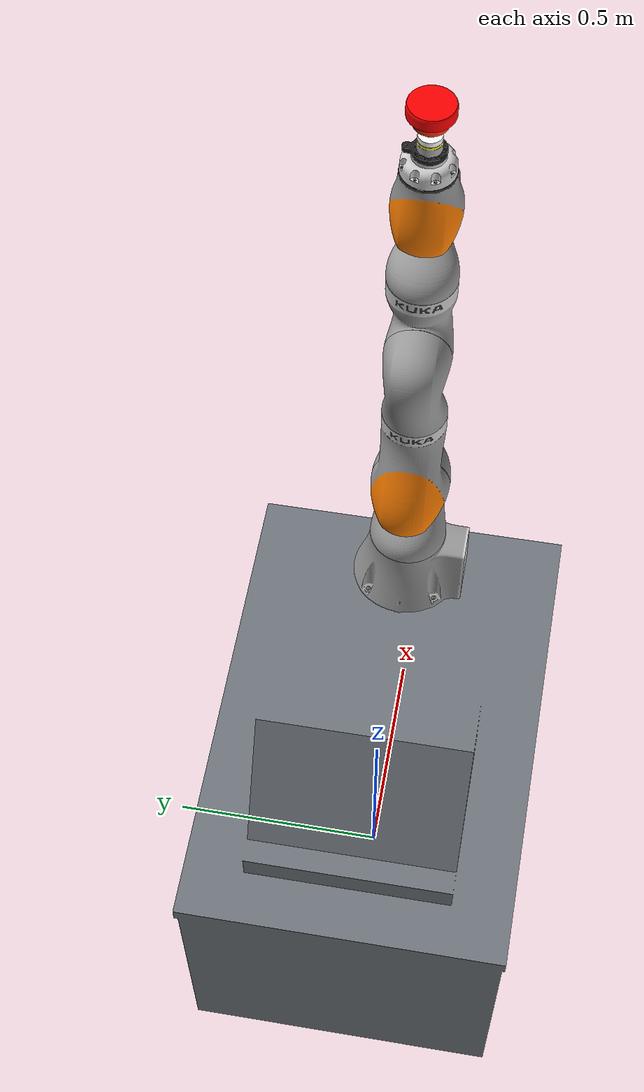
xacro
<?xml version="1.0" ?>

<!-- top level -->
<robot name="iiwa14" xmlns:xacro="http://www.ros.org/wiki/xacro">

    <xacro:property name="base_mass" value="40.0" />
    <xacro:property name="robot_offset_x" value="0.40" />
    <xacro:property name="robot_offset_y" value="0.0" />
    <xacro:property name="base_ixx" value="5.333" />
    <xacro:property name="base_iyy" value="5.600" />
    <xacro:property name="base_izz" value="5.467" />

    <!-- include the iiwa macro and controller -->
    <xacro:include filename="$(find lbr_description)/urdf/iiwa14/iiwa14.urdf.xacro" />
    <xacro:include filename="$(find lbr_description)/gazebo/lbr_gazebo.xacro" />
    <xacro:include filename="$(find lbr_description)/ros2_control/lbr_system_interface.xacro" />
    <xacro:include
        filename="$(find lbr_description)/models/ft_sensor/real_ft_sensor_macro.xacro"
    />
    <xacro:include filename="$(find lbr_description)/models/tool/tool.xacro" />

    <!-- arguments -->
    <xacro:arg name="robot_name" default="lbr" />
    <xacro:arg name="mode" default="true" />
    <xacro:arg
        name="joint_limits_path"
        default="$(find lbr_description)/urdf/iiwa14/joint_limits.yaml" />
    <xacro:arg
        name="system_config_path"
        default="$(find lbr_description)/ros2_control/lbr_system_config.yaml" />
    <xacro:arg
        name="initial_joint_positions_path"
        default="$(find lbr_description)/ros2_control/initial_joint_positions.yaml" />

    <xacro:macro
        name="ft_gazebo_plugin"
        params="ft_joint_name topic_name update_rate:='1000' noise_stddev_force:='0.01' noise_stddev_torque:='0.001'"
    >
        <gazebo reference="${ft_joint_name}">
            <preserveFixedJoint>true</preserveFixedJoint>
            <sensor name="ft_sensor" type="force_torque">
                <always_on>true</always_on>
                <update_rate>${update_rate}</update_rate>
                <visualize>false</visualize>
                <force_torque>
                    <frame>child</frame>
                    <measure_direction>child_to_parent</measure_direction>
                    <force>
                        <x><noise type="gaussian"><mean>0.0</mean><stddev
                                >${noise_stddev_force}</stddev></noise></x>
                        <y><noise type="gaussian"><mean>0.0</mean><stddev
                                >${noise_stddev_force}</stddev></noise></y>
                        <z><noise type="gaussian"><mean>0.0</mean><stddev
                                >${noise_stddev_force}</stddev></noise></z>
                    </force>
                    <torque>
                        <x><noise type="gaussian"><mean>0.0</mean><stddev
                                >${noise_stddev_torque}</stddev></noise></x>
                        <y><noise type="gaussian"><mean>0.0</mean><stddev
                                >${noise_stddev_torque}</stddev></noise></y>
                        <z><noise type="gaussian"><mean>0.0</mean><stddev
                                >${noise_stddev_torque}</stddev></noise></z>
                    </torque>
                </force_torque>
                <topic>${topic_name}</topic>
                <plugin
                    filename="gz-sim-forcetorque-system"
                    name="gz::sim::systems::ForceTorque"
                />
            </sensor>
        </gazebo>
    </xacro:macro>

    <!-- KDL requires a link without inertia / Gazebo requires a connection to world link or robot
    will tipple https://github.com/lbr-stack/lbr_fri_ros2_stack/issues/230 -->
    <link name="world" />

    <!-- base_link between world and link_0 -->
    <link name="$(arg robot_name)_base_link">
        <inertial>
            <origin xyz="0 0 0" rpy="0 0 0" />
            <mass value="${base_mass}" />
            <inertia
                ixx="${base_ixx}"
                ixy="0.0"
                ixz="0.0"
                iyy="${base_iyy}"
                iyz="0.0"
                izz="${base_izz}"
            />
        </inertial>
        <visual>
            <origin xyz="0 0 0" rpy="0 0 0" />
            <geometry>
                <mesh
                    filename="package://lbr_description/meshes/iiwa14/carrito_azul/Cuerpo_carro_1.dae"
                />
            </geometry>
        </visual>
        <!-- simplified box for collision optimization -->
        <collision>
            <origin xyz="-0.2195 0 0.1615" rpy="0 0 0" />
            <geometry>
                <box size="0.389 0.705 0.323" />
            </geometry>
        </collision>
    </link>

    <!-- joint between world and base_link -->
    <joint name="$(arg robot_name)_world_joint" type="fixed">
        <parent link="world" />
        <child link="$(arg robot_name)_base_link" />
        <origin xyz="0 0 0.660" rpy="0 0 0" />
    </joint>

    <!-- joint between base_link and link_0 -->
    <joint name="$(arg robot_name)_base_robot_joint" type="fixed">
        <parent link="$(arg robot_name)_base_link" />
        <child link="$(arg robot_name)_link_0" />
        <origin xyz="${robot_offset_x} ${robot_offset_y} 0" rpy="0 0 ${pi/2}" />
    </joint>

    <!-- macros for gazebo / mock / hardware -->
    <xacro:lbr_gazebo robot_name="$(arg robot_name)" />
    <xacro:lbr_system_interface
        robot_name="$(arg robot_name)"
        mode="$(arg mode)"
        system_config_path="$(arg system_config_path)"
        initial_joint_positions_path="$(arg initial_joint_positions_path)" />

    <!-- iiwa description -->
    <xacro:iiwa14
        robot_name="$(arg robot_name)"
        joint_limits_path="$(arg joint_limits_path)" />

    <xacro:brida_cam parent="$(arg robot_name)_link_7" name="brida_cam">
        <origin xyz="0 0 0.035" rpy="0 0 0" />
    </xacro:brida_cam>

    <xacro:ft45 parent="brida_cam_tip" name="ft45">
        <origin xyz="0 0 0" rpy="0 0 ${pi}" />
    </xacro:ft45>

    <!-- plugin FT sobre joint: brida_cam_tip_ft45_base_joint -->
    <xacro:ft_gazebo_plugin
        ft_joint_name="brida_cam_tip_ft45_base_joint"
        topic_name="ft_sensor/wrench"
        update_rate="200"
    />

    <xacro:brida_ft parent="ft45_tip" name="brida_ft">
        <origin xyz="0 0 0" rpy="0 0 0" />
    </xacro:brida_ft>

    <xacro:repair_tool_iiwa name="tool_body" parent="brida_ft_tip">
        <origin xyz="0 0 0" rpy="0 0 0" />
    </xacro:repair_tool_iiwa>

    <xacro:repair_sponge_red name="tool" parent="tool_body_tip">
        <origin xyz="0 0 0" rpy="0 0 ${pi}" />
    </xacro:repair_sponge_red>

    <!-- state-only interface for passive sponge joints -->
    <ros2_control name="$(arg robot_name)_tool_passive_interface" type="system">
        <hardware>
            <plugin>mock_components/GenericSystem</plugin>
        </hardware>
        <joint name="tool_layer1_joint">
            <state_interface name="position">
                <param name="initial_value">0.0</param>
            </state_interface>
        </joint>
        <joint name="tool_layer2_joint">
            <state_interface name="position">
                <param name="initial_value">0.0</param>
            </state_interface>
        </joint>
        <joint name="tool_layer3_joint">
            <state_interface name="position">
                <param name="initial_value">0.0</param>
            </state_interface>
        </joint>
    </ros2_control>

    <joint name="$(arg robot_name)_joint_ee" type="fixed">
        <parent link="tool_tip" />
        <child link="$(arg robot_name)_link_ee" />
        <origin xyz="0 0 0" rpy="0 0 0" />
    </joint>

    <link name="$(arg robot_name)_link_ee">
    </link>

    <!-- camera link 7 -->

    <!-- Sensor FT45 -->

    <!-- Brida FT -->

    <!-- Tool body (base de la esponja) -->

    <gazebo reference="brida_cam_tip_ft45_base_joint">
        <provideFeedback>true</provideFeedback>
    </gazebo>

    <!-- Tool (sponge) -->
    <gazebo reference="ft45_base">
        <kp>500000.0</kp>            <!-- stiffness low -->
        <kd>5.0</kd>              <!-- damping moderate -->
        <mu1>1.0</mu1>             <!-- high friction sponge-screen -->
        <mu2>0.8</mu2>
        <maxVel>0.01</maxVel>
        <minDepth>0.0001</minDepth>
        <maxContacts>6</maxContacts>
    </gazebo>

</robot>

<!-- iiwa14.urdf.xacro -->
<robot xmlns:xacro="http://www.ros.org/wiki/xacro">
    <!-- robot as extracted via https://github.com/syuntoku14/fusion2urdf -->
    <xacro:macro name="iiwa14"
        params="robot_name:=^|lbr joint_limits_path:=^|'$(find lbr_description)/urdf/iiwa14/joint_limits.yaml'">

        <!-- load joint limits via yaml -->
        <xacro:property name="joint_limits" value="${xacro.load_yaml(joint_limits_path)}" />

        <!-- constants -->
        <xacro:property name="PI" value="3.1415926535897931" />
        <xacro:property name="joint_damping" value="10.0" />
        <xacro:property name="joint_friction" value="0.1" />

        <!-- links and joints -->
        <link name="${robot_name}_link_0">
            <inertial>
                <origin rpy="0 0 0" xyz="-0.012822 0.0 0.071507" />
                <mass value="7.050378" />
                <inertia ixx="0.031226" ixy="0.0" ixz="0.000871" iyy="0.039697" iyz="0.0"
                    izz="0.043102" />
            </inertial>
            <visual>
                <origin rpy="0 0 0" xyz="0 0 0" />
                <geometry>
                    <mesh filename="package://lbr_description/meshes/iiwa14/visual/link_0.dae" />
                </geometry>
            </visual>
            <collision>
                <origin rpy="0 0 0" xyz="0 0 0" />
                <geometry>
                    <mesh filename="package://lbr_description/meshes/iiwa14/collision/link_0.stl" />
                </geometry>
            </collision>
        </link>

        <joint name="${robot_name}_A1" type="revolute">
            <origin rpy="0 0 0" xyz="0.0 0.0 0.1475" />
            <parent link="${robot_name}_link_0" />
            <child link="${robot_name}_link_1" />
            <axis xyz="0.0 0.0 1.0" />
            <limit
                effort="${joint_limits['A1']['effort']}"
                lower="${joint_limits['A1']['lower'] * PI / 180}"
                upper="${joint_limits['A1']['upper'] * PI / 180}"
                velocity="${joint_limits['A1']['velocity'] * PI / 180}" />
            <safety_controller
                soft_lower_limit="${joint_limits['A1']['lower'] * PI / 180}"
                soft_upper_limit="${joint_limits['A1']['upper'] * PI / 180}"
                k_position="${joint_limits['A1']['velocity'] / joint_limits['A1']['safety_position_margin']}"
                k_velocity="${joint_limits['A1']['k_velocity']}" />
            <dynamics damping="${joint_damping}" friction="${joint_friction}" />
        </joint>

        <link name="${robot_name}_link_1">
            <inertial>
                <origin rpy="0 0 0" xyz="0.0 -0.033795 0.132404" />
                <mass value="5.289529" />
                <inertia ixx="0.042462" ixy="0.0" ixz="0.0" iyy="0.042838" iyz="0.006341"
                    izz="0.01587" />
            </inertial>
            <visual>
                <origin rpy="0 0 0" xyz="0.0 0.0 -0.1475" />
                <geometry>
                    <mesh filename="package://lbr_description/meshes/iiwa14/visual/link_1.dae" />
                </geometry>
            </visual>
            <collision>
                <origin rpy="0 0 0" xyz="0.0 0.0 -0.1475" />
                <geometry>
                    <mesh filename="package://lbr_description/meshes/iiwa14/collision/link_1.stl" />
                </geometry>
            </collision>
        </link>

        <joint name="${robot_name}_A2" type="revolute">
            <origin rpy="0 0 0" xyz="0.0 -0.01 0.2125" />
            <parent link="${robot_name}_link_1" />
            <child link="${robot_name}_link_2" />
            <axis xyz="0.0 1.0 0.0" />
            <limit
                effort="${joint_limits['A2']['effort']}"
                lower="${joint_limits['A2']['lower'] * PI / 180}"
                upper="${joint_limits['A2']['upper'] * PI / 180}"
                velocity="${joint_limits['A2']['velocity'] * PI / 180}" />
            <safety_controller
                soft_lower_limit="${joint_limits['A2']['lower'] * PI / 180}"
                soft_upper_limit="${joint_limits['A2']['upper'] * PI / 180}"
                k_position="${joint_limits['A2']['velocity'] / joint_limits['A2']['safety_position_margin']}"
                k_velocity="${joint_limits['A2']['k_velocity']}" />
            <dynamics damping="${joint_damping}" friction="${joint_friction}" />
        </joint>

        <link name="${robot_name}_link_2">
            <inertial>
                <origin rpy="0 0 0" xyz="0.000136 0.047548 0.076322" />
                <mass value="5.688888" />
                <inertia ixx="0.055182" ixy="-3.3e-05" ixz="5.6e-05" iyy="0.053983" iyz="0.010034"
                    izz="0.016523" />
            </inertial>
            <visual>
                <origin rpy="0 0 0" xyz="0.0 0.01 -0.36" />
                <geometry>
                    <mesh filename="package://lbr_description/meshes/iiwa14/visual/link_2.dae" />
                </geometry>
            </visual>
            <collision>
                <origin rpy="0 0 0" xyz="0.0 0.01 -0.36" />
                <geometry>
                    <mesh filename="package://lbr_description/meshes/iiwa14/collision/link_2.stl" />
                </geometry>
            </collision>
        </link>

        <joint name="${robot_name}_A3" type="revolute">
            <origin rpy="0 0 0" xyz="0.0 0.01 0.228" />
            <parent link="${robot_name}_link_2" />
            <child link="${robot_name}_link_3" />
            <axis xyz="0.0 0.0 1.0" />
            <limit
                effort="${joint_limits['A3']['effort']}"
                lower="${joint_limits['A3']['lower'] * PI / 180}"
                upper="${joint_limits['A3']['upper'] * PI / 180}"
                velocity="${joint_limits['A3']['velocity'] * PI / 180}" />
            <safety_controller
                soft_lower_limit="${joint_limits['A3']['lower'] * PI / 180}"
                soft_upper_limit="${joint_limits['A3']['upper'] * PI / 180}"
                k_position="${joint_limits['A3']['velocity'] / joint_limits['A3']['safety_position_margin']}"
                k_velocity="${joint_limits['A3']['k_velocity']}" />
            <dynamics damping="${joint_damping}" friction="${joint_friction}" />
        </joint>

        <link name="${robot_name}_link_3">
            <inertial>
                <origin rpy="0 0 0" xyz="0.0 0.034913 0.123108" />
                <mass value="3.461245" />
                <inertia ixx="0.02172" ixy="0.0" ixz="0.0" iyy="0.02073" iyz="-0.003845"
                    izz="0.007701" />
            </inertial>
            <visual>
                <origin rpy="0 0 0" xyz="0.0 0.0 -0.588" />
                <geometry>
                    <mesh filename="package://lbr_description/meshes/iiwa14/visual/link_3.dae" />
                </geometry>
            </visual>
            <collision>
                <origin rpy="0 0 0" xyz="0.0 0.0 -0.588" />
                <geometry>
                    <mesh filename="package://lbr_description/meshes/iiwa14/collision/link_3.stl" />
                </geometry>
            </collision>
        </link>

        <joint name="${robot_name}_A4" type="revolute">
            <origin rpy="0 0 0" xyz="0.0 0.0105 0.192" />
            <parent link="${robot_name}_link_3" />
            <child link="${robot_name}_link_4" />
            <axis xyz="0.0 -1.0 0.0" />
            <limit
                effort="${joint_limits['A4']['effort']}"
                lower="${joint_limits['A4']['lower'] * PI / 180}"
                upper="${joint_limits['A4']['upper'] * PI / 180}"
                velocity="${joint_limits['A4']['velocity'] * PI / 180}" />
            <safety_controller
                soft_lower_limit="${joint_limits['A4']['lower'] * PI / 180}"
                soft_upper_limit="${joint_limits['A4']['upper'] * PI / 180}"
                k_position="${joint_limits['A4']['velocity'] / joint_limits['A4']['safety_position_margin']}"
                k_velocity="${joint_limits['A4']['k_velocity']}" />
            <dynamics damping="${joint_damping}" friction="${joint_friction}" />
        </joint>

        <link name="${robot_name}_link_4">
            <inertial>
                <origin rpy="0 0 0" xyz="0.0 -0.039793 0.086944" />
                <mass value="4.122995" />
                <inertia ixx="0.03241" ixy="0.0" ixz="0.0" iyy="0.030758" iyz="-0.006022"
                    izz="0.009883" />
            </inertial>
            <visual>
                <origin rpy="0 0 0" xyz="0.0 -0.0105 -0.78" />
                <geometry>
                    <mesh filename="package://lbr_description/meshes/iiwa14/visual/link_4.dae" />
                </geometry>
            </visual>
            <collision>
                <origin rpy="0 0 0" xyz="0.0 -0.0105 -0.78" />
                <geometry>
                    <mesh filename="package://lbr_description/meshes/iiwa14/collision/link_4.stl" />
                </geometry>
            </collision>
        </link>

        <joint name="${robot_name}_A5" type="revolute">
            <origin rpy="0 0 0" xyz="0.0 -0.0105 0.2075" />
            <parent link="${robot_name}_link_4" />
            <child link="${robot_name}_link_5" />
            <axis xyz="0.0 0.0 1.0" />
            <limit
                effort="${joint_limits['A5']['effort']}"
                lower="${joint_limits['A5']['lower'] * PI / 180}"
                upper="${joint_limits['A5']['upper'] * PI / 180}"
                velocity="${joint_limits['A5']['velocity'] * PI / 180}" />
            <safety_controller
                soft_lower_limit="${joint_limits['A5']['lower'] * PI / 180}"
                soft_upper_limit="${joint_limits['A5']['upper'] * PI / 180}"
                k_position="${joint_limits['A5']['velocity'] / joint_limits['A5']['safety_position_margin']}"
                k_velocity="${joint_limits['A5']['k_velocity']}" />
            <dynamics damping="${joint_damping}" friction="${joint_friction}" />
        </joint>

        <link name="${robot_name}_link_5">
            <inertial>
                <origin rpy="0 0 0" xyz="0.0 -0.029824 0.076267" />
                <mass value="1.563756" />
                <inertia ixx="0.008677" ixy="0.0" ixz="0.0" iyy="0.007297" iyz="0.002869"
                    izz="0.003935" />
            </inertial>
            <visual>
                <origin rpy="0 0 0" xyz="0.0 0.0 -0.9875" />
                <geometry>
                    <mesh filename="package://lbr_description/meshes/iiwa14/visual/link_5.dae" />
                </geometry>
            </visual>
            <collision>
                <origin rpy="0 0 0" xyz="0.0 0.0 -0.9875" />
                <geometry>
                    <mesh filename="package://lbr_description/meshes/iiwa14/collision/link_5.stl" />
                </geometry>
            </collision>
        </link>

        <joint name="${robot_name}_A6" type="revolute">
            <origin rpy="0 0 0" xyz="0.0 -0.0707 0.1925" />
            <parent link="${robot_name}_link_5" />
            <child link="${robot_name}_link_6" />
            <axis xyz="0.0 1.0 0.0" />
            <limit
                effort="${joint_limits['A6']['effort']}"
                lower="${joint_limits['A6']['lower'] * PI / 180}"
                upper="${joint_limits['A6']['upper'] * PI / 180}"
                velocity="${joint_limits['A6']['velocity'] * PI / 180}" />
            <safety_controller
                soft_lower_limit="${joint_limits['A6']['lower'] * PI / 180}"
                soft_upper_limit="${joint_limits['A6']['upper'] * PI / 180}"
                k_position="${joint_limits['A6']['velocity'] / joint_limits['A6']['safety_position_margin']}"
                k_velocity="${joint_limits['A6']['k_velocity']}" />
            <dynamics damping="${joint_damping}" friction="${joint_friction}" />
        </joint>

        <link name="${robot_name}_link_6">
            <inertial>
                <origin rpy="0 0 0" xyz="0.0 0.07102 0.00495" />
                <mass value="2.457878" />
                <inertia ixx="0.007227" ixy="0.0" ixz="0.0" iyy="0.006958" iyz="0.000318"
                    izz="0.004734" />
            </inertial>
            <visual>
                <origin rpy="0 0 0" xyz="0.0 0.0707 -1.18" />
                <geometry>
                    <mesh filename="package://lbr_description/meshes/iiwa14/visual/link_6.dae" />
                </geometry>
            </visual>
            <collision>
                <origin rpy="0 0 0" xyz="0.0 0.0707 -1.18" />
                <geometry>
                    <mesh filename="package://lbr_description/meshes/iiwa14/collision/link_6.stl" />
                </geometry>
            </collision>
        </link>

        <joint name="${robot_name}_A7" type="revolute">
            <origin rpy="0 0 0" xyz="0.0 0.0707 0.091" />
            <parent link="${robot_name}_link_6" />
            <child link="${robot_name}_link_7" />
            <axis xyz="0.0 0.0 1.0" />
            <limit
                effort="${joint_limits['A7']['effort']}"
                lower="${joint_limits['A7']['lower'] * PI / 180}"
                upper="${joint_limits['A7']['upper'] * PI / 180}"
                velocity="${joint_limits['A7']['velocity'] * PI / 180}" />
            <safety_controller
                soft_lower_limit="${joint_limits['A7']['lower'] * PI / 180}"
                soft_upper_limit="${joint_limits['A7']['upper'] * PI / 180}"
                k_position="${joint_limits['A7']['velocity'] / joint_limits['A7']['safety_position_margin']}"
                k_velocity="${joint_limits['A7']['k_velocity']}" />
            <dynamics damping="${joint_damping}" friction="${joint_friction}" />
        </joint>

        <link name="${robot_name}_link_7">
            <inertial>
                <origin rpy="0 0 0" xyz="3.0000e-06 -2.0000e-06 1.3782e-02" />
                <mass value="0.265331" />
                <inertia ixx="0.000175" ixy="0.0" ixz="0.0" iyy="0.000175" iyz="0.0" izz="0.000306" />
            </inertial>
            <visual>
                <origin rpy="0 0 0" xyz="0.0 0.0 -1.271" />
                <geometry>
                    <mesh filename="package://lbr_description/meshes/iiwa14/visual/link_7.dae" />
                </geometry>
            </visual>
            <collision>
                <origin rpy="0 0 0" xyz="0.0 0.0 -1.271" />
                <geometry>
                    <mesh filename="package://lbr_description/meshes/iiwa14/collision/link_7.stl" />
                </geometry>
            </collision>
        </link>

    </xacro:macro>
</robot>

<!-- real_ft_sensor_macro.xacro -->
<robot name="ft_sensor_OnRobot" xmlns:xacro="http://ros.org/wiki/xacro">

	<!-- Common tools: PI, inertias of a cuboid and cylinder -->
	<xacro:property name="M_PI" value="3.1415926535897931"/>
	<xacro:macro name="cuboid_inertia_def" params="width height length mass">
	<inertia ixx="${mass * (height * height + length * length) / 12}"
		 iyy="${mass * (width * width + length * length) / 12}"
		 izz="${mass * (width * width + height * height) / 12}"
		 ixy="0" iyz="0" ixz="0"/>
	</xacro:macro>
	<xacro:macro name="cylinder_inertia_def" params="radius length mass">
	<inertia ixx="${mass * (3 * radius * radius + length * length) / 12}"
		     iyy="${mass * (3 * radius * radius + length * length) / 12}"
		     izz="${mass * radius* radius / 2}"
		     ixy="0" iyz="0" ixz="0"/>
	</xacro:macro>

    <xacro:macro name="brida_cam" params="parent name *origin">

    <joint name="${parent}_${name}_base_joint" type="fixed">
      <xacro:insert_block name="origin"/>
      <parent link="${parent}"/>
      <child link="${name}_base"/>
    </joint>

    <link name="${name}_base">
	<inertial>
		<mass value="0.05"/>
		<origin xyz="0 0 0.005"  />
		<xacro:cylinder_inertia_def radius="0.031" length="0.01" mass="0.05"/>
	</inertial>
	<visual>
		<origin xyz="0 0 0" rpy="0 0 0"/>
		<geometry>
			<mesh filename="package://lbr_description/models/brida/meshes/visual/brida_cam.dae"/>
		</geometry>
	</visual>
	<collision>
		<origin xyz="0 0 0" rpy="0 0 0"/>
		<geometry>
		<!--- ahora usa un cilindro primitivo para optimizar los golpes y el calculo de colisiones -->
			<cylinder radius="0.031" length="0.01"/>
		</geometry>
	</collision>
    </link>

    <link name="${name}_tip"/>

    <joint name="${parent}_${name}_tip_joint" type="fixed">
      <origin xyz="0 0 0.01" rpy="0 0 0"/>
      <parent link="${name}_base"/>
      <child link="${name}_tip"/>
    </joint>

    </xacro:macro>

    <xacro:macro name="ft45" params="parent name *origin">

    <joint name="${parent}_${name}_base_joint" type="fixed">
      <xacro:insert_block name="origin"/>
      <parent link="${parent}"/>
      <child link="${name}_base"/>
    </joint>

    <link name="${name}_base">
	<inertial>
		<mass value="0.15"/>
		<origin xyz="0 0 0.0105"  />
		<xacro:cylinder_inertia_def radius="0.0225" length="0.021" mass="0.15"/>
	</inertial>
	<visual>
		<origin xyz="0 0 0" rpy="0 0 0"/>
		<geometry>
			<mesh filename="package://lbr_description/models/ft_sensor/meshes/visual/FT45.dae"/>
		</geometry>
	</visual>
	<collision>
		<origin xyz="0 0 0" rpy="0 0 0"/>
		<geometry>
		<cylinder radius="0.0225" length="0.021"/>
		<!--- la parte de arriba ya han llegado a usar formas primitivas para ahorrar CPU -->
		</geometry>
	</collision>
    </link>

    <link name="${name}_tip"/>

    <joint name="${parent}_${name}_tip_joint" type="fixed">
      <origin xyz="0 0 0.021" rpy="0 0 0"/>
      <parent link="${name}_base"/>
      <child link="${name}_tip"/>
    </joint>

    </xacro:macro>

    <xacro:macro name="brida_ft" params="parent name *origin">

    <joint name="${parent}_${name}_base_joint" type="fixed">
      <xacro:insert_block name="origin"/>
      <parent link="${parent}"/>
      <child link="${name}_base"/>
    </joint>

    <link name="${name}_base">
	<inertial>
		<mass value="0.05"/>
		<origin xyz="0 0 0.005"  />
		<xacro:cylinder_inertia_def radius="0.022" length="0.01" mass="0.05"/>
	</inertial>
	<visual>
		<origin xyz="0 0 0" rpy="0 0 0"/>
		<geometry>
			<mesh filename="package://lbr_description/models/brida/meshes/visual/brida_ft.dae"/>
		</geometry>
	</visual>
	<collision>
		<origin xyz="0 0 0" rpy="0 0 0"/>
		<geometry>
		    <cylinder radius="0.022" length="0.01"/>
		</geometry>
	</collision>
    </link>

    <link name="${name}_tip"/>

    <joint name="${parent}_${name}_tip_joint" type="fixed">
      <origin xyz="0 0 0.015" rpy="0 0 0"/>
      <parent link="${name}_base"/>
      <child link="${name}_tip"/>
    </joint>

    </xacro:macro>

</robot>

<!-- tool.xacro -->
<robot xmlns:xacro="http://ros.org/wiki/xacro">

    <xacro:macro name="repair_tool" params="name parent *origin">

      <joint name="${name}_base_joint" type="fixed">
        <xacro:insert_block name="origin" />
        <parent link="${parent}"/>
        <child link="${name}_base"/>
      </joint>

      <link name="${name}_base">
        <inertial>
          <mass value="0.8" />
          <origin xyz="-0.015887 0 0.036837" rpy="0 0 0" />
          <inertia ixx="0.001143" ixy="-0.0" ixz="-0.000433" iyy="0.002044" iyz="-0.0" izz="0.001124" />
        </inertial>
        <visual>
          <origin xyz="0 0 0" rpy="0 0 0"/>
          <geometry>
                  <mesh filename="package://lbr_description/models/tool/meshes/visual/Airos150_red_sponge.dae"/>
          </geometry>
        </visual>
        <collision>
          <origin xyz="0 0 0" rpy="0 0 0" />
          <geometry>
            <mesh filename="package://lbr_description/models/tool/meshes/collision/Airos150_red_sponge.stl"/>
          </geometry>
        </collision>
      </link>

    </xacro:macro>

    <xacro:macro name="conditioning_tool" params="name parent *origin">

      <joint name="${name}_brida_joint" type="fixed">
        <xacro:insert_block name="origin" />
        <parent link="${parent}"/>
        <child link="${name}_base"/>
      </joint>

      <link name="${name}_base">
        <inertial>
          <mass value="0.110" />
          <origin xyz="-0.009159 -0.01474 0.093085" rpy="0 0 0" />
          <inertia ixx="0.002444" ixy="-0.000123" ixz="-0.000103" iyy="0.003024" iyz="-5.1e-05" izz="0.001237" />
        </inertial>
        <visual>
          <origin xyz="0 0 0" rpy="0 0 0"/>
          <geometry>
                  <mesh filename="package://lbr_description/models/tool/meshes/visual/Airos350CV_brida_red_sponge.dae"/>
          </geometry>
        </visual>
        <collision>
          <origin xyz="0 0 0" rpy="0 0 0" />
          <geometry>
            <mesh filename="package://lbr_description/models/tool/meshes/collision/Airos350CV_brida_red_sponge.stl"/>
          </geometry>
        </collision>
      </link>

    </xacro:macro>

    <xacro:macro name="repair_tool_iiwa" params="name parent *origin">

      <joint name="${parent}_${name}_joint" type="fixed">
        <xacro:insert_block name="origin" />
        <parent link="${parent}"/>
        <child link="${name}_base"/>
      </joint>

      <link name="${name}_base">
        <inertial>
          <mass value="0.110" />
          <origin xyz="-0.009159 -0.01474 0.093085" rpy="0 0 0" />
          <inertia ixx="0.002444" ixy="-0.000123" ixz="-0.000103" iyy="0.003024" iyz="-5.1e-05" izz="0.001237" />
        </inertial>
        <visual>
          <origin xyz="0 0 0" rpy="0 0 0"/>
          <geometry>
            <mesh filename="package://lbr_description/models/tool/meshes/visual/tool_base.dae"/>
          </geometry>
        </visual>
        <collision>
          <origin xyz="0 0 0.015" rpy="0 0 0" />
          <geometry>
            <cylinder radius="0.03" length="0.03" />
          </geometry>
        </collision>
      </link>

      <link name="${name}_tip"/>

      <joint name="${parent}_${name}_tip_joint" type="fixed">
        <origin xyz="0 0 0.036" rpy="0 0 0"/>
        <parent link="${name}_base"/>
        <child link="${name}_tip"/>
      </joint>

    </xacro:macro>

    <xacro:macro name="repair_sponge_red" params="name parent *origin
                 layer_radius:=0.045
                 layer_length:=0.006667
                 layer1_stiffness:=4000.0 layer1_damping:=6.0 layer1_max_compression:=0.001
                 layer2_stiffness:=2500.0 layer2_damping:=4.0 layer2_max_compression:=0.0015
                 layer3_stiffness:=1200.0 layer3_damping:=3.0 layer3_max_compression:=0.002">

      <joint name="${name}_sponge_joint" type="fixed">
        <xacro:insert_block name="origin" />
        <parent link="${parent}"/>
        <child link="${name}_base"/>
      </joint>

      <link name="${name}_base">
        <inertial>
          <mass value="0.110" />
          <origin xyz="-0.009159 -0.01474 0.093085" rpy="0 0 0" />
          <inertia ixx="0.002444" ixy="-0.000123" ixz="-0.000103" iyy="0.003024" iyz="-5.1e-05" izz="0.001237" />
        </inertial>
        <visual>
          <origin xyz="0 0 0" rpy="0 0 0"/>
          <geometry>
            <mesh filename="package://lbr_description/models/tool/meshes/visual/tool_sponge_red.dae"/>
          </geometry>
        </visual>
      </link>

      <joint name="${name}_layer1_joint" type="prismatic">
        <origin xyz="0 0 0.005" rpy="0 0 0" />
        <parent link="${name}_base"/>
        <child link="${name}_layer1"/>
        <axis xyz="0 0 1" />
        <limit lower="-${layer1_max_compression}" upper="0" effort="50" velocity="0.5" />
        <dynamics damping="${layer1_damping}" spring_stiffness="${layer1_stiffness}" spring_reference="0.0" />
      </joint>

      <link name="${name}_layer1">
        <inertial>
          <mass value="0.0075" />
          <origin xyz="0 0 ${layer_length/2}" rpy="0 0 0" />
          <inertia ixx="7e-05" ixy="0.0" ixz="0.0" iyy="7e-05" iyz="0.0" izz="7e-05" />
        </inertial>
        <collision>
          <origin xyz="0 0 ${layer_length/2}" rpy="0 0 0" />
          <geometry>
            <cylinder radius="${layer_radius}" length="${layer_length}" />
          </geometry>
        </collision>
      </link>

      <joint name="${name}_layer2_joint" type="prismatic">
        <origin xyz="0 0 ${layer_length}" rpy="0 0 0" />
        <parent link="${name}_layer1"/>
        <child link="${name}_layer2"/>
        <axis xyz="0 0 1" />
        <limit lower="-${layer2_max_compression}" upper="0" effort="50" velocity="0.5" />
        <dynamics damping="${layer2_damping}" spring_stiffness="${layer2_stiffness}" spring_reference="0.0" />
      </joint>

      <link name="${name}_layer2">
        <inertial>
          <mass value="0.0075" />
          <origin xyz="0 0 ${layer_length/2}" rpy="0 0 0" />
          <inertia ixx="7e-05" ixy="0.0" ixz="0.0" iyy="7e-05" iyz="0.0" izz="7e-05" />
        </inertial>
        <collision>
          <origin xyz="0 0 ${layer_length/2}" rpy="0 0 0" />
          <geometry>
            <cylinder radius="${layer_radius}" length="${layer_length}" />
          </geometry>
        </collision>
      </link>

      <joint name="${name}_layer3_joint" type="prismatic">
        <origin xyz="0 0 ${layer_length}" rpy="0 0 0" />
        <parent link="${name}_layer2"/>
        <child link="${name}_layer3"/>
        <axis xyz="0 0 1" />
        <limit lower="-${layer3_max_compression}" upper="0" effort="50" velocity="0.5" />
        <dynamics damping="${layer3_damping}" spring_stiffness="${layer3_stiffness}" spring_reference="0.0" />
      </joint>

      <link name="${name}_layer3">
        <inertial>
          <mass value="0.0075" />
          <origin xyz="0 0 ${layer_length/2}" rpy="0 0 0" />
          <inertia ixx="7e-05" ixy="0.0" ixz="0.0" iyy="7e-05" iyz="0.0" izz="7e-05" />
        </inertial>
        <collision>
          <origin xyz="0 0 ${layer_length/2}" rpy="0 0 0" />
          <geometry>
            <cylinder radius="${layer_radius}" length="${layer_length}" />
          </geometry>
        </collision>
      </link>

    <link name="${name}_tip"/>

    <joint name="${parent}_${name}_tip_joint" type="fixed">
      <origin xyz="0 0 0.007867" rpy="0 0 0"/>
      <parent link="${name}_layer3"/>
      <child link="${name}_tip"/>
    </joint>

    </xacro:macro>

    <xacro:macro name="conditioning_tool_iiwa" params="name parent *origin">

      <joint name="${parent}_${name}_joint" type="fixed">
        <xacro:insert_block name="origin" />
        <parent link="${parent}"/>
        <child link="${name}_base"/>
      </joint>

      <link name="${name}_base">
        <inertial>
          <mass value="0.110" />
          <origin xyz="-0.009159 -0.01474 0.093085" rpy="0 0 0" />
          <inertia ixx="0.002444" ixy="-0.000123" ixz="-0.000103" iyy="0.003024" iyz="-5.1e-05" izz="0.001237" />
        </inertial>
        <visual>
          <origin xyz="0 0 0" rpy="0 0 0"/>
          <geometry>
            <mesh filename="package://lbr_description/models/tool/meshes/visual/tool_base.dae"/>
          </geometry>
        </visual>
        <collision>
          <origin xyz="0 0 0" rpy="0 0 0" />
          <geometry>
            <mesh filename="package://lbr_description/models/tool/meshes/collision/tool_base.stl"/>
          </geometry>
        </collision>
      </link>

      <link name="${name}_tip"/>

      <joint name="${robot_name}_tip_joint" type="revolute">
       <origin xyz="0 0 0.036" rpy="0 0 0"/>
       <parent link="${name}_base"/>
       <child link="${name}_tip"/>
       <axis xyz="0.0 0.0 1.0" />
        <limit
                effort="1000000"
                lower="0"
                upper="0"
                velocity="0" />
    </joint>

    </xacro:macro>

    <xacro:macro name="conditioning_sponge_red" params="name parent *origin">

      <joint name="${name}_sponge_joint" type="revolute">
        <xacro:insert_block name="origin" />
        <parent link="${parent}"/>
        <child link="${name}_base"/>
      </joint>

      <link name="${name}_base">
        <inertial>
          <mass value="0.110" />
          <origin xyz="-0.009159 -0.01474 0.093085" rpy="0 0 0" />
          <inertia ixx="0.002444" ixy="-0.000123" ixz="-0.000103" iyy="0.003024" iyz="-5.1e-05" izz="0.001237" />
        </inertial>
        <visual>
          <origin xyz="0 0 0" rpy="0 0 0"/>
          <geometry>
            <mesh filename="package://lbr_description/models/tool/meshes/visual/tool_sponge_red.dae"/>
          </geometry>
        </visual>
        <collision>
          <origin xyz="0 0 0" rpy="0 0 0" />
          <geometry>
            <mesh filename="package://lbr_description/models/tool/meshes/collision/tool_sponge_red.stl"/>
          </geometry>
        </collision>
      </link>

    <link name="${name}_tip"/>

    <joint name="${robot_name}_tip_joint" type="revolute">
      <origin xyz="0 0 0.0262" rpy="0 0 0"/>
      <parent link="${name}_base"/>
      <child link="${name}_tip"/>
      <axis xyz="0.0 0.0 1.0" />
        <limit
                effort="1000000"
                lower="0"
                upper="0"
                velocity="0" />
    </joint>

    </xacro:macro>

    <xacro:macro name="calibration_tool" params="name parent *origin">

      <joint name="${name}_base_joint" type="fixed">
        <xacro:insert_block name="origin" />
        <parent link="${parent}"/>
        <child link="${name}_base"/>
      </joint>

      <link name="${name}_base">
        <inertial>
          <mass value="0.039" />
          <origin xyz="-0.0 0.0 0.0116" rpy="0 0 0" />
          <inertia ixx="0.0001" ixy="-0.0" ixz="0.0" iyy="0.0001" iyz="-0.0" izz="0.0001" />
        </inertial>
        <visual>
          <origin xyz="0 0 0" rpy="0 0 0"/>
          <geometry>
                  <mesh filename="package://lbr_description/models/tool/meshes/visual/Calibration_tool.dae"/>
          </geometry>
        </visual>
        <collision>
          <origin xyz="0 0 0" rpy="0 0 0" />
          <geometry>
            <mesh filename="package://lbr_description/models/tool/meshes/collision/Calibration_tool.stl"/>
          </geometry>
        </collision>
      </link>

    </xacro:macro>

    <xacro:macro name="tool0-tool_tip_dummy" params="name parent *origin">

      <joint name="${parent}-${name}_dummy" type="fixed">
        <xacro:insert_block name="origin" />
        <parent link="${parent}"/>
        <child link="${name}_dummy"/>
      </joint>

      <link name="${name}_dummy" />

    </xacro:macro>

  </robot>
